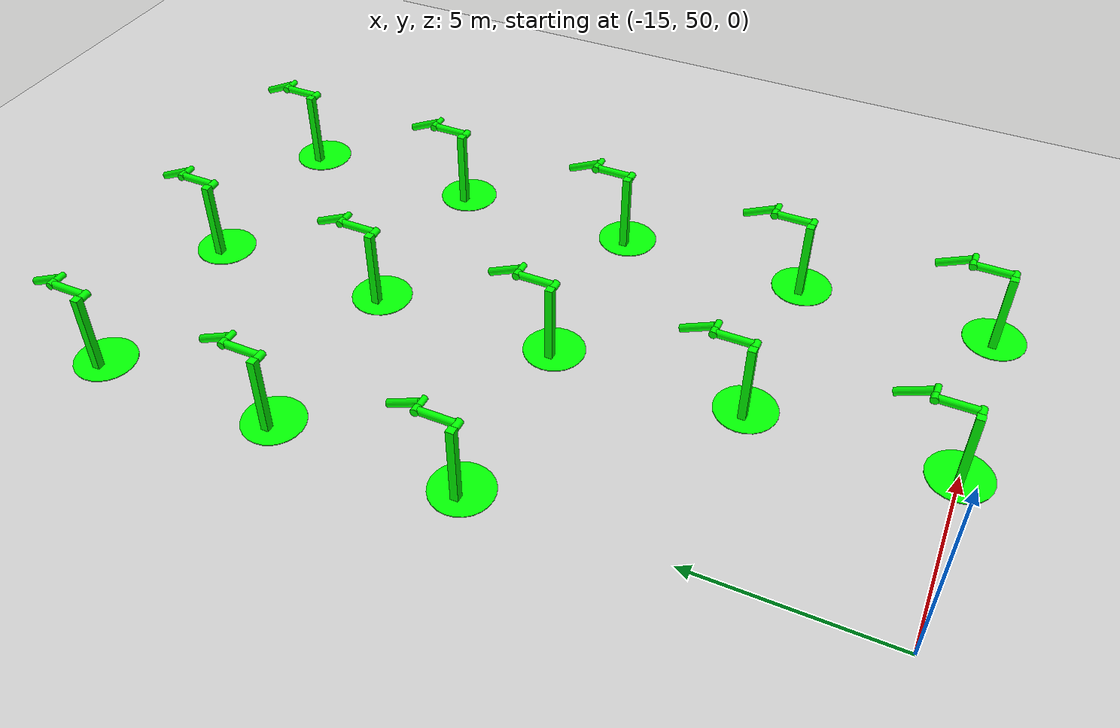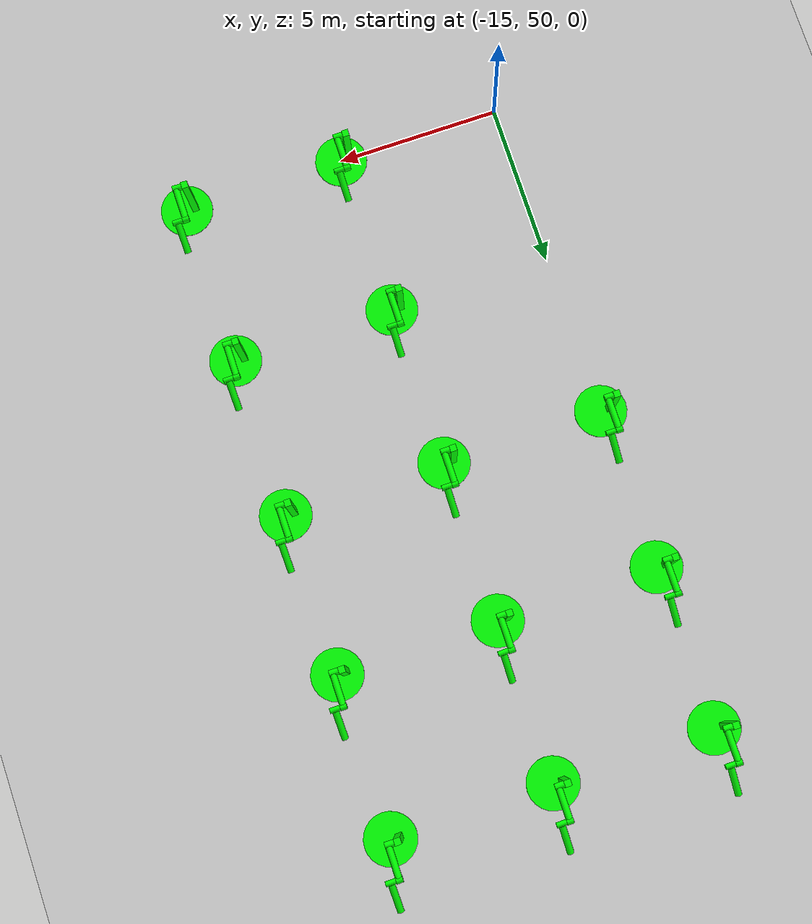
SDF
<sdf version="1.6">
 <world name="double_pendulums">
  <model name="ground_plane">
   <static>true</static>
   <link name="link">
    <collision name="collision">
     <geometry><plane><normal>0 0 1</normal><size>100 100</size></plane></geometry>
    </collision>
    <visual name="visual">
     <geometry><plane><normal>0 0 1</normal><size>100 100</size></plane></geometry>
     <material>
      <ambient>0.8 0.8 0.8 1</ambient>
      <diffuse>0.8 0.8 0.8 1</diffuse>
      <specular>0.8 0.8 0.8 1</specular>
     </material>
    </visual>
   </link>
  </model>
  <model name="dbl_pendulum_153">
   <pose>-10 50 0 0 0 0</pose>
   <link name="base">
    <inertial><mass>100</mass></inertial>
    <visual name="vis_plate_on_ground">
     <pose>0 0 0.01 0 0 0</pose>
     <geometry><cylinder><radius>0.8</radius><length>0.02</length></cylinder></geometry>
     <material><ambient>0 1 0 1</ambient><diffuse>0 1 0 1</diffuse><specular>0 1 0 1</specular></material>
    </visual>
    <visual name="vis_pole">
     <pose>-0.275 0 1.1 0 0 0</pose>
     <geometry><box><size>0.2 0.2 2.2</size></box></geometry>
     <material><ambient>0 1 0 1</ambient><diffuse>0 1 0 1</diffuse><specular>0 1 0 1</specular></material>
    </visual>
    <collision name="col_plate_on_ground">
     <pose>0 0 0.01 0 0 0</pose>
     <geometry><cylinder><radius>0.8</radius><length>0.02</length></cylinder></geometry>
    </collision>
    <collision name="col_pole">
     <pose>-0.275 0 1.1 0 0 0</pose>
     <geometry><box><size>0.2 0.2 2.2</size></box></geometry>
    </collision>
   </link>
   <link name="upper_link">
    <pose>0 0 2.1 -1.5708 0 0</pose>
    <inertial><pose>0 0 0.5 0 0 0</pose></inertial>
    <visual name="vis_upper_joint">
     <pose>-0.05 0 0 0 1.5708 0</pose>
     <geometry><cylinder><radius>0.1</radius><length>0.3</length></cylinder></geometry>
     <material><ambient>0 1 0 1</ambient><diffuse>0 1 0 1</diffuse><specular>0 1 0 1</specular></material>
    </visual>
    <visual name="vis_lower_joint">
     <pose>0 0 1.0 0 1.5708 0</pose>
     <geometry><cylinder><radius>0.1</radius><length>0.2</length></cylinder></geometry>
     <material><ambient>0 1 0 1</ambient><diffuse>0 1 0 1</diffuse><specular>0 1 0 1</specular></material>
    </visual>
    <visual name="vis_cylinder">
     <pose>0 0 0.5 0 0 0</pose>
     <geometry><cylinder><radius>0.1</radius><length>0.9</length></cylinder></geometry>
     <material><ambient>0 1 0 1</ambient><diffuse>0 1 0 1</diffuse><specular>0 1 0 1</specular></material>
    </visual>
    <collision name="col_upper_joint">
     <pose>-0.05 0 0 0 1.5708 0</pose>
     <geometry><cylinder><radius>0.1</radius><length>0.3</length></cylinder></geometry>
    </collision>
    <collision name="col_lower_joint">
     <pose>0 0 1.0 0 1.5708 0</pose>
     <geometry><cylinder><radius>0.1</radius><length>0.2</length></cylinder></geometry>
    </collision>
    <collision name="col_cylinder">
     <pose>0 0 0.5 0 0 0</pose>
     <geometry><cylinder><radius>0.1</radius><length>0.9</length></cylinder></geometry>
    </collision>
   </link>
   <link name="lower_link">
    <pose>0.25 1.0 2.1 -2 0 0</pose>
    <inertial><pose>0 0 0.5 0 0 0</pose></inertial>
    <visual name="vis_lower_joint">
     <pose>0 0 0 0 1.5708 0</pose>
     <geometry><cylinder><radius>0.08</radius><length>0.3</length></cylinder></geometry>
     <material><ambient>0 1 0 1</ambient><diffuse>0 1 0 1</diffuse><specular>0 1 0 1</specular></material>
    </visual>
    <visual name="vis_cylinder">
     <pose>0 0 0.5 0 0 0</pose>
     <geometry><cylinder><radius>0.1</radius><length>0.9</length></cylinder></geometry>
     <material><ambient>0 1 0 1</ambient><diffuse>0 1 0 1</diffuse><specular>0 1 0 1</specular></material>
    </visual>
    <collision name="col_lower_joint">
     <pose>0 0 0 0 1.5708 0</pose>
     <geometry><cylinder><radius>0.08</radius><length>0.3</length></cylinder></geometry>
    </collision>
    <collision name="col_cylinder">
     <pose>0 0 0.5 0 0 0</pose>
     <geometry><cylinder><radius>0.1</radius><length>0.9</length></cylinder></geometry>
    </collision>
   </link>
   <joint name="upper_joint" type="revolute">
    <parent>base</parent>
    <child>upper_link</child>
    <axis><xyz>1.0 0 0</xyz></axis>
   </joint>
   <joint name="lower_joint" type="revolute">
    <parent>upper_link</parent>
    <child>lower_link</child>
    <axis><xyz>1.0 0 0</xyz></axis>
   </joint>
  </model>
  <model name="dbl_pendulum_154">
   <pose>-5 50 0 0 0 0</pose>
   <link name="base">
    <inertial><mass>100</mass></inertial>
    <visual name="vis_plate_on_ground">
     <pose>0 0 0.01 0 0 0</pose>
     <geometry><cylinder><radius>0.8</radius><length>0.02</length></cylinder></geometry>
     <material><ambient>0 1 0 1</ambient><diffuse>0 1 0 1</diffuse><specular>0 1 0 1</specular></material>
    </visual>
    <visual name="vis_pole">
     <pose>-0.275 0 1.1 0 0 0</pose>
     <geometry><box><size>0.2 0.2 2.2</size></box></geometry>
     <material><ambient>0 1 0 1</ambient><diffuse>0 1 0 1</diffuse><specular>0 1 0 1</specular></material>
    </visual>
    <collision name="col_plate_on_ground">
     <pose>0 0 0.01 0 0 0</pose>
     <geometry><cylinder><radius>0.8</radius><length>0.02</length></cylinder></geometry>
    </collision>
    <collision name="col_pole">
     <pose>-0.275 0 1.1 0 0 0</pose>
     <geometry><box><size>0.2 0.2 2.2</size></box></geometry>
    </collision>
   </link>
   <link name="upper_link">
    <pose>0 0 2.1 -1.5708 0 0</pose>
    <inertial><pose>0 0 0.5 0 0 0</pose></inertial>
    <visual name="vis_upper_joint">
     <pose>-0.05 0 0 0 1.5708 0</pose>
     <geometry><cylinder><radius>0.1</radius><length>0.3</length></cylinder></geometry>
     <material><ambient>0 1 0 1</ambient><diffuse>0 1 0 1</diffuse><specular>0 1 0 1</specular></material>
    </visual>
    <visual name="vis_lower_joint">
     <pose>0 0 1.0 0 1.5708 0</pose>
     <geometry><cylinder><radius>0.1</radius><length>0.2</length></cylinder></geometry>
     <material><ambient>0 1 0 1</ambient><diffuse>0 1 0 1</diffuse><specular>0 1 0 1</specular></material>
    </visual>
    <visual name="vis_cylinder">
     <pose>0 0 0.5 0 0 0</pose>
     <geometry><cylinder><radius>0.1</radius><length>0.9</length></cylinder></geometry>
     <material><ambient>0 1 0 1</ambient><diffuse>0 1 0 1</diffuse><specular>0 1 0 1</specular></material>
    </visual>
    <collision name="col_upper_joint">
     <pose>-0.05 0 0 0 1.5708 0</pose>
     <geometry><cylinder><radius>0.1</radius><length>0.3</length></cylinder></geometry>
    </collision>
    <collision name="col_lower_joint">
     <pose>0 0 1.0 0 1.5708 0</pose>
     <geometry><cylinder><radius>0.1</radius><length>0.2</length></cylinder></geometry>
    </collision>
    <collision name="col_cylinder">
     <pose>0 0 0.5 0 0 0</pose>
     <geometry><cylinder><radius>0.1</radius><length>0.9</length></cylinder></geometry>
    </collision>
   </link>
   <link name="lower_link">
    <pose>0.25 1.0 2.1 -2 0 0</pose>
    <inertial><pose>0 0 0.5 0 0 0</pose></inertial>
    <visual name="vis_lower_joint">
     <pose>0 0 0 0 1.5708 0</pose>
     <geometry><cylinder><radius>0.08</radius><length>0.3</length></cylinder></geometry>
     <material><ambient>0 1 0 1</ambient><diffuse>0 1 0 1</diffuse><specular>0 1 0 1</specular></material>
    </visual>
    <visual name="vis_cylinder">
     <pose>0 0 0.5 0 0 0</pose>
     <geometry><cylinder><radius>0.1</radius><length>0.9</length></cylinder></geometry>
     <material><ambient>0 1 0 1</ambient><diffuse>0 1 0 1</diffuse><specular>0 1 0 1</specular></material>
    </visual>
    <collision name="col_lower_joint">
     <pose>0 0 0 0 1.5708 0</pose>
     <geometry><cylinder><radius>0.08</radius><length>0.3</length></cylinder></geometry>
    </collision>
    <collision name="col_cylinder">
     <pose>0 0 0.5 0 0 0</pose>
     <geometry><cylinder><radius>0.1</radius><length>0.9</length></cylinder></geometry>
    </collision>
   </link>
   <joint name="upper_joint" type="revolute">
    <parent>base</parent>
    <child>upper_link</child>
    <axis><xyz>1.0 0 0</xyz></axis>
   </joint>
   <joint name="lower_joint" type="revolute">
    <parent>upper_link</parent>
    <child>lower_link</child>
    <axis><xyz>1.0 0 0</xyz></axis>
   </joint>
  </model>
  <model name="dbl_pendulum_168">
   <pose>-10 55 0 0 0 0</pose>
   <link name="base">
    <inertial><mass>100</mass></inertial>
    <visual name="vis_plate_on_ground">
     <pose>0 0 0.01 0 0 0</pose>
     <geometry><cylinder><radius>0.8</radius><length>0.02</length></cylinder></geometry>
     <material><ambient>0 1 0 1</ambient><diffuse>0 1 0 1</diffuse><specular>0 1 0 1</specular></material>
    </visual>
    <visual name="vis_pole">
     <pose>-0.275 0 1.1 0 0 0</pose>
     <geometry><box><size>0.2 0.2 2.2</size></box></geometry>
     <material><ambient>0 1 0 1</ambient><diffuse>0 1 0 1</diffuse><specular>0 1 0 1</specular></material>
    </visual>
    <collision name="col_plate_on_ground">
     <pose>0 0 0.01 0 0 0</pose>
     <geometry><cylinder><radius>0.8</radius><length>0.02</length></cylinder></geometry>
    </collision>
    <collision name="col_pole">
     <pose>-0.275 0 1.1 0 0 0</pose>
     <geometry><box><size>0.2 0.2 2.2</size></box></geometry>
    </collision>
   </link>
   <link name="upper_link">
    <pose>0 0 2.1 -1.5708 0 0</pose>
    <inertial><pose>0 0 0.5 0 0 0</pose></inertial>
    <visual name="vis_upper_joint">
     <pose>-0.05 0 0 0 1.5708 0</pose>
     <geometry><cylinder><radius>0.1</radius><length>0.3</length></cylinder></geometry>
     <material><ambient>0 1 0 1</ambient><diffuse>0 1 0 1</diffuse><specular>0 1 0 1</specular></material>
    </visual>
    <visual name="vis_lower_joint">
     <pose>0 0 1.0 0 1.5708 0</pose>
     <geometry><cylinder><radius>0.1</radius><length>0.2</length></cylinder></geometry>
     <material><ambient>0 1 0 1</ambient><diffuse>0 1 0 1</diffuse><specular>0 1 0 1</specular></material>
    </visual>
    <visual name="vis_cylinder">
     <pose>0 0 0.5 0 0 0</pose>
     <geometry><cylinder><radius>0.1</radius><length>0.9</length></cylinder></geometry>
     <material><ambient>0 1 0 1</ambient><diffuse>0 1 0 1</diffuse><specular>0 1 0 1</specular></material>
    </visual>
    <collision name="col_upper_joint">
     <pose>-0.05 0 0 0 1.5708 0</pose>
     <geometry><cylinder><radius>0.1</radius><length>0.3</length></cylinder></geometry>
    </collision>
    <collision name="col_lower_joint">
     <pose>0 0 1.0 0 1.5708 0</pose>
     <geometry><cylinder><radius>0.1</radius><length>0.2</length></cylinder></geometry>
    </collision>
    <collision name="col_cylinder">
     <pose>0 0 0.5 0 0 0</pose>
     <geometry><cylinder><radius>0.1</radius><length>0.9</length></cylinder></geometry>
    </collision>
   </link>
   <link name="lower_link">
    <pose>0.25 1.0 2.1 -2 0 0</pose>
    <inertial><pose>0 0 0.5 0 0 0</pose></inertial>
    <visual name="vis_lower_joint">
     <pose>0 0 0 0 1.5708 0</pose>
     <geometry><cylinder><radius>0.08</radius><length>0.3</length></cylinder></geometry>
     <material><ambient>0 1 0 1</ambient><diffuse>0 1 0 1</diffuse><specular>0 1 0 1</specular></material>
    </visual>
    <visual name="vis_cylinder">
     <pose>0 0 0.5 0 0 0</pose>
     <geometry><cylinder><radius>0.1</radius><length>0.9</length></cylinder></geometry>
     <material><ambient>0 1 0 1</ambient><diffuse>0 1 0 1</diffuse><specular>0 1 0 1</specular></material>
    </visual>
    <collision name="col_lower_joint">
     <pose>0 0 0 0 1.5708 0</pose>
     <geometry><cylinder><radius>0.08</radius><length>0.3</length></cylinder></geometry>
    </collision>
    <collision name="col_cylinder">
     <pose>0 0 0.5 0 0 0</pose>
     <geometry><cylinder><radius>0.1</radius><length>0.9</length></cylinder></geometry>
    </collision>
   </link>
   <joint name="upper_joint" type="revolute">
    <parent>base</parent>
    <child>upper_link</child>
    <axis><xyz>1.0 0 0</xyz></axis>
   </joint>
   <joint name="lower_joint" type="revolute">
    <parent>upper_link</parent>
    <child>lower_link</child>
    <axis><xyz>1.0 0 0</xyz></axis>
   </joint>
  </model>
  <model name="dbl_pendulum_169">
   <pose>-5 55 0 0 0 0</pose>
   <link name="base">
    <inertial><mass>100</mass></inertial>
    <visual name="vis_plate_on_ground">
     <pose>0 0 0.01 0 0 0</pose>
     <geometry><cylinder><radius>0.8</radius><length>0.02</length></cylinder></geometry>
     <material><ambient>0 1 0 1</ambient><diffuse>0 1 0 1</diffuse><specular>0 1 0 1</specular></material>
    </visual>
    <visual name="vis_pole">
     <pose>-0.275 0 1.1 0 0 0</pose>
     <geometry><box><size>0.2 0.2 2.2</size></box></geometry>
     <material><ambient>0 1 0 1</ambient><diffuse>0 1 0 1</diffuse><specular>0 1 0 1</specular></material>
    </visual>
    <collision name="col_plate_on_ground">
     <pose>0 0 0.01 0 0 0</pose>
     <geometry><cylinder><radius>0.8</radius><length>0.02</length></cylinder></geometry>
    </collision>
    <collision name="col_pole">
     <pose>-0.275 0 1.1 0 0 0</pose>
     <geometry><box><size>0.2 0.2 2.2</size></box></geometry>
    </collision>
   </link>
   <link name="upper_link">
    <pose>0 0 2.1 -1.5708 0 0</pose>
    <inertial><pose>0 0 0.5 0 0 0</pose></inertial>
    <visual name="vis_upper_joint">
     <pose>-0.05 0 0 0 1.5708 0</pose>
     <geometry><cylinder><radius>0.1</radius><length>0.3</length></cylinder></geometry>
     <material><ambient>0 1 0 1</ambient><diffuse>0 1 0 1</diffuse><specular>0 1 0 1</specular></material>
    </visual>
    <visual name="vis_lower_joint">
     <pose>0 0 1.0 0 1.5708 0</pose>
     <geometry><cylinder><radius>0.1</radius><length>0.2</length></cylinder></geometry>
     <material><ambient>0 1 0 1</ambient><diffuse>0 1 0 1</diffuse><specular>0 1 0 1</specular></material>
    </visual>
    <visual name="vis_cylinder">
     <pose>0 0 0.5 0 0 0</pose>
     <geometry><cylinder><radius>0.1</radius><length>0.9</length></cylinder></geometry>
     <material><ambient>0 1 0 1</ambient><diffuse>0 1 0 1</diffuse><specular>0 1 0 1</specular></material>
    </visual>
    <collision name="col_upper_joint">
     <pose>-0.05 0 0 0 1.5708 0</pose>
     <geometry><cylinder><radius>0.1</radius><length>0.3</length></cylinder></geometry>
    </collision>
    <collision name="col_lower_joint">
     <pose>0 0 1.0 0 1.5708 0</pose>
     <geometry><cylinder><radius>0.1</radius><length>0.2</length></cylinder></geometry>
    </collision>
    <collision name="col_cylinder">
     <pose>0 0 0.5 0 0 0</pose>
     <geometry><cylinder><radius>0.1</radius><length>0.9</length></cylinder></geometry>
    </collision>
   </link>
   <link name="lower_link">
    <pose>0.25 1.0 2.1 -2 0 0</pose>
    <inertial><pose>0 0 0.5 0 0 0</pose></inertial>
    <visual name="vis_lower_joint">
     <pose>0 0 0 0 1.5708 0</pose>
     <geometry><cylinder><radius>0.08</radius><length>0.3</length></cylinder></geometry>
     <material><ambient>0 1 0 1</ambient><diffuse>0 1 0 1</diffuse><specular>0 1 0 1</specular></material>
    </visual>
    <visual name="vis_cylinder">
     <pose>0 0 0.5 0 0 0</pose>
     <geometry><cylinder><radius>0.1</radius><length>0.9</length></cylinder></geometry>
     <material><ambient>0 1 0 1</ambient><diffuse>0 1 0 1</diffuse><specular>0 1 0 1</specular></material>
    </visual>
    <collision name="col_lower_joint">
     <pose>0 0 0 0 1.5708 0</pose>
     <geometry><cylinder><radius>0.08</radius><length>0.3</length></cylinder></geometry>
    </collision>
    <collision name="col_cylinder">
     <pose>0 0 0.5 0 0 0</pose>
     <geometry><cylinder><radius>0.1</radius><length>0.9</length></cylinder></geometry>
    </collision>
   </link>
   <joint name="upper_joint" type="revolute">
    <parent>base</parent>
    <child>upper_link</child>
    <axis><xyz>1.0 0 0</xyz></axis>
   </joint>
   <joint name="lower_joint" type="revolute">
    <parent>upper_link</parent>
    <child>lower_link</child>
    <axis><xyz>1.0 0 0</xyz></axis>
   </joint>
  </model>
  <model name="dbl_pendulum_182">
   <pose>-15 60 0 0 0 0</pose>
   <link name="base">
    <inertial><mass>100</mass></inertial>
    <visual name="vis_plate_on_ground">
     <pose>0 0 0.01 0 0 0</pose>
     <geometry><cylinder><radius>0.8</radius><length>0.02</length></cylinder></geometry>
     <material><ambient>0 1 0 1</ambient><diffuse>0 1 0 1</diffuse><specular>0 1 0 1</specular></material>
    </visual>
    <visual name="vis_pole">
     <pose>-0.275 0 1.1 0 0 0</pose>
     <geometry><box><size>0.2 0.2 2.2</size></box></geometry>
     <material><ambient>0 1 0 1</ambient><diffuse>0 1 0 1</diffuse><specular>0 1 0 1</specular></material>
    </visual>
    <collision name="col_plate_on_ground">
     <pose>0 0 0.01 0 0 0</pose>
     <geometry><cylinder><radius>0.8</radius><length>0.02</length></cylinder></geometry>
    </collision>
    <collision name="col_pole">
     <pose>-0.275 0 1.1 0 0 0</pose>
     <geometry><box><size>0.2 0.2 2.2</size></box></geometry>
    </collision>
   </link>
   <link name="upper_link">
    <pose>0 0 2.1 -1.5708 0 0</pose>
    <inertial><pose>0 0 0.5 0 0 0</pose></inertial>
    <visual name="vis_upper_joint">
     <pose>-0.05 0 0 0 1.5708 0</pose>
     <geometry><cylinder><radius>0.1</radius><length>0.3</length></cylinder></geometry>
     <material><ambient>0 1 0 1</ambient><diffuse>0 1 0 1</diffuse><specular>0 1 0 1</specular></material>
    </visual>
    <visual name="vis_lower_joint">
     <pose>0 0 1.0 0 1.5708 0</pose>
     <geometry><cylinder><radius>0.1</radius><length>0.2</length></cylinder></geometry>
     <material><ambient>0 1 0 1</ambient><diffuse>0 1 0 1</diffuse><specular>0 1 0 1</specular></material>
    </visual>
    <visual name="vis_cylinder">
     <pose>0 0 0.5 0 0 0</pose>
     <geometry><cylinder><radius>0.1</radius><length>0.9</length></cylinder></geometry>
     <material><ambient>0 1 0 1</ambient><diffuse>0 1 0 1</diffuse><specular>0 1 0 1</specular></material>
    </visual>
    <collision name="col_upper_joint">
     <pose>-0.05 0 0 0 1.5708 0</pose>
     <geometry><cylinder><radius>0.1</radius><length>0.3</length></cylinder></geometry>
    </collision>
    <collision name="col_lower_joint">
     <pose>0 0 1.0 0 1.5708 0</pose>
     <geometry><cylinder><radius>0.1</radius><length>0.2</length></cylinder></geometry>
    </collision>
    <collision name="col_cylinder">
     <pose>0 0 0.5 0 0 0</pose>
     <geometry><cylinder><radius>0.1</radius><length>0.9</length></cylinder></geometry>
    </collision>
   </link>
   <link name="lower_link">
    <pose>0.25 1.0 2.1 -2 0 0</pose>
    <inertial><pose>0 0 0.5 0 0 0</pose></inertial>
    <visual name="vis_lower_joint">
     <pose>0 0 0 0 1.5708 0</pose>
     <geometry><cylinder><radius>0.08</radius><length>0.3</length></cylinder></geometry>
     <material><ambient>0 1 0 1</ambient><diffuse>0 1 0 1</diffuse><specular>0 1 0 1</specular></material>
    </visual>
    <visual name="vis_cylinder">
     <pose>0 0 0.5 0 0 0</pose>
     <geometry><cylinder><radius>0.1</radius><length>0.9</length></cylinder></geometry>
     <material><ambient>0 1 0 1</ambient><diffuse>0 1 0 1</diffuse><specular>0 1 0 1</specular></material>
    </visual>
    <collision name="col_lower_joint">
     <pose>0 0 0 0 1.5708 0</pose>
     <geometry><cylinder><radius>0.08</radius><length>0.3</length></cylinder></geometry>
    </collision>
    <collision name="col_cylinder">
     <pose>0 0 0.5 0 0 0</pose>
     <geometry><cylinder><radius>0.1</radius><length>0.9</length></cylinder></geometry>
    </collision>
   </link>
   <joint name="upper_joint" type="revolute">
    <parent>base</parent>
    <child>upper_link</child>
    <axis><xyz>1.0 0 0</xyz></axis>
   </joint>
   <joint name="lower_joint" type="revolute">
    <parent>upper_link</parent>
    <child>lower_link</child>
    <axis><xyz>1.0 0 0</xyz></axis>
   </joint>
  </model>
  <model name="dbl_pendulum_183">
   <pose>-10 60 0 0 0 0</pose>
   <link name="base">
    <inertial><mass>100</mass></inertial>
    <visual name="vis_plate_on_ground">
     <pose>0 0 0.01 0 0 0</pose>
     <geometry><cylinder><radius>0.8</radius><length>0.02</length></cylinder></geometry>
     <material><ambient>0 1 0 1</ambient><diffuse>0 1 0 1</diffuse><specular>0 1 0 1</specular></material>
    </visual>
    <visual name="vis_pole">
     <pose>-0.275 0 1.1 0 0 0</pose>
     <geometry><box><size>0.2 0.2 2.2</size></box></geometry>
     <material><ambient>0 1 0 1</ambient><diffuse>0 1 0 1</diffuse><specular>0 1 0 1</specular></material>
    </visual>
    <collision name="col_plate_on_ground">
     <pose>0 0 0.01 0 0 0</pose>
     <geometry><cylinder><radius>0.8</radius><length>0.02</length></cylinder></geometry>
    </collision>
    <collision name="col_pole">
     <pose>-0.275 0 1.1 0 0 0</pose>
     <geometry><box><size>0.2 0.2 2.2</size></box></geometry>
    </collision>
   </link>
   <link name="upper_link">
    <pose>0 0 2.1 -1.5708 0 0</pose>
    <inertial><pose>0 0 0.5 0 0 0</pose></inertial>
    <visual name="vis_upper_joint">
     <pose>-0.05 0 0 0 1.5708 0</pose>
     <geometry><cylinder><radius>0.1</radius><length>0.3</length></cylinder></geometry>
     <material><ambient>0 1 0 1</ambient><diffuse>0 1 0 1</diffuse><specular>0 1 0 1</specular></material>
    </visual>
    <visual name="vis_lower_joint">
     <pose>0 0 1.0 0 1.5708 0</pose>
     <geometry><cylinder><radius>0.1</radius><length>0.2</length></cylinder></geometry>
     <material><ambient>0 1 0 1</ambient><diffuse>0 1 0 1</diffuse><specular>0 1 0 1</specular></material>
    </visual>
    <visual name="vis_cylinder">
     <pose>0 0 0.5 0 0 0</pose>
     <geometry><cylinder><radius>0.1</radius><length>0.9</length></cylinder></geometry>
     <material><ambient>0 1 0 1</ambient><diffuse>0 1 0 1</diffuse><specular>0 1 0 1</specular></material>
    </visual>
    <collision name="col_upper_joint">
     <pose>-0.05 0 0 0 1.5708 0</pose>
     <geometry><cylinder><radius>0.1</radius><length>0.3</length></cylinder></geometry>
    </collision>
    <collision name="col_lower_joint">
     <pose>0 0 1.0 0 1.5708 0</pose>
     <geometry><cylinder><radius>0.1</radius><length>0.2</length></cylinder></geometry>
    </collision>
    <collision name="col_cylinder">
     <pose>0 0 0.5 0 0 0</pose>
     <geometry><cylinder><radius>0.1</radius><length>0.9</length></cylinder></geometry>
    </collision>
   </link>
   <link name="lower_link">
    <pose>0.25 1.0 2.1 -2 0 0</pose>
    <inertial><pose>0 0 0.5 0 0 0</pose></inertial>
    <visual name="vis_lower_joint">
     <pose>0 0 0 0 1.5708 0</pose>
     <geometry><cylinder><radius>0.08</radius><length>0.3</length></cylinder></geometry>
     <material><ambient>0 1 0 1</ambient><diffuse>0 1 0 1</diffuse><specular>0 1 0 1</specular></material>
    </visual>
    <visual name="vis_cylinder">
     <pose>0 0 0.5 0 0 0</pose>
     <geometry><cylinder><radius>0.1</radius><length>0.9</length></cylinder></geometry>
     <material><ambient>0 1 0 1</ambient><diffuse>0 1 0 1</diffuse><specular>0 1 0 1</specular></material>
    </visual>
    <collision name="col_lower_joint">
     <pose>0 0 0 0 1.5708 0</pose>
     <geometry><cylinder><radius>0.08</radius><length>0.3</length></cylinder></geometry>
    </collision>
    <collision name="col_cylinder">
     <pose>0 0 0.5 0 0 0</pose>
     <geometry><cylinder><radius>0.1</radius><length>0.9</length></cylinder></geometry>
    </collision>
   </link>
   <joint name="upper_joint" type="revolute">
    <parent>base</parent>
    <child>upper_link</child>
    <axis><xyz>1.0 0 0</xyz></axis>
   </joint>
   <joint name="lower_joint" type="revolute">
    <parent>upper_link</parent>
    <child>lower_link</child>
    <axis><xyz>1.0 0 0</xyz></axis>
   </joint>
  </model>
  <model name="dbl_pendulum_184">
   <pose>-5 60 0 0 0 0</pose>
   <link name="base">
    <inertial><mass>100</mass></inertial>
    <visual name="vis_plate_on_ground">
     <pose>0 0 0.01 0 0 0</pose>
     <geometry><cylinder><radius>0.8</radius><length>0.02</length></cylinder></geometry>
     <material><ambient>0 1 0 1</ambient><diffuse>0 1 0 1</diffuse><specular>0 1 0 1</specular></material>
    </visual>
    <visual name="vis_pole">
     <pose>-0.275 0 1.1 0 0 0</pose>
     <geometry><box><size>0.2 0.2 2.2</size></box></geometry>
     <material><ambient>0 1 0 1</ambient><diffuse>0 1 0 1</diffuse><specular>0 1 0 1</specular></material>
    </visual>
    <collision name="col_plate_on_ground">
     <pose>0 0 0.01 0 0 0</pose>
     <geometry><cylinder><radius>0.8</radius><length>0.02</length></cylinder></geometry>
    </collision>
    <collision name="col_pole">
     <pose>-0.275 0 1.1 0 0 0</pose>
     <geometry><box><size>0.2 0.2 2.2</size></box></geometry>
    </collision>
   </link>
   <link name="upper_link">
    <pose>0 0 2.1 -1.5708 0 0</pose>
    <inertial><pose>0 0 0.5 0 0 0</pose></inertial>
    <visual name="vis_upper_joint">
     <pose>-0.05 0 0 0 1.5708 0</pose>
     <geometry><cylinder><radius>0.1</radius><length>0.3</length></cylinder></geometry>
     <material><ambient>0 1 0 1</ambient><diffuse>0 1 0 1</diffuse><specular>0 1 0 1</specular></material>
    </visual>
    <visual name="vis_lower_joint">
     <pose>0 0 1.0 0 1.5708 0</pose>
     <geometry><cylinder><radius>0.1</radius><length>0.2</length></cylinder></geometry>
     <material><ambient>0 1 0 1</ambient><diffuse>0 1 0 1</diffuse><specular>0 1 0 1</specular></material>
    </visual>
    <visual name="vis_cylinder">
     <pose>0 0 0.5 0 0 0</pose>
     <geometry><cylinder><radius>0.1</radius><length>0.9</length></cylinder></geometry>
     <material><ambient>0 1 0 1</ambient><diffuse>0 1 0 1</diffuse><specular>0 1 0 1</specular></material>
    </visual>
    <collision name="col_upper_joint">
     <pose>-0.05 0 0 0 1.5708 0</pose>
     <geometry><cylinder><radius>0.1</radius><length>0.3</length></cylinder></geometry>
    </collision>
    <collision name="col_lower_joint">
     <pose>0 0 1.0 0 1.5708 0</pose>
     <geometry><cylinder><radius>0.1</radius><length>0.2</length></cylinder></geometry>
    </collision>
    <collision name="col_cylinder">
     <pose>0 0 0.5 0 0 0</pose>
     <geometry><cylinder><radius>0.1</radius><length>0.9</length></cylinder></geometry>
    </collision>
   </link>
   <link name="lower_link">
    <pose>0.25 1.0 2.1 -2 0 0</pose>
    <inertial><pose>0 0 0.5 0 0 0</pose></inertial>
    <visual name="vis_lower_joint">
     <pose>0 0 0 0 1.5708 0</pose>
     <geometry><cylinder><radius>0.08</radius><length>0.3</length></cylinder></geometry>
     <material><ambient>0 1 0 1</ambient><diffuse>0 1 0 1</diffuse><specular>0 1 0 1</specular></material>
    </visual>
    <visual name="vis_cylinder">
     <pose>0 0 0.5 0 0 0</pose>
     <geometry><cylinder><radius>0.1</radius><length>0.9</length></cylinder></geometry>
     <material><ambient>0 1 0 1</ambient><diffuse>0 1 0 1</diffuse><specular>0 1 0 1</specular></material>
    </visual>
    <collision name="col_lower_joint">
     <pose>0 0 0 0 1.5708 0</pose>
     <geometry><cylinder><radius>0.08</radius><length>0.3</length></cylinder></geometry>
    </collision>
    <collision name="col_cylinder">
     <pose>0 0 0.5 0 0 0</pose>
     <geometry><cylinder><radius>0.1</radius><length>0.9</length></cylinder></geometry>
    </collision>
   </link>
   <joint name="upper_joint" type="revolute">
    <parent>base</parent>
    <child>upper_link</child>
    <axis><xyz>1.0 0 0</xyz></axis>
   </joint>
   <joint name="lower_joint" type="revolute">
    <parent>upper_link</parent>
    <child>lower_link</child>
    <axis><xyz>1.0 0 0</xyz></axis>
   </joint>
  </model>
  <model name="dbl_pendulum_197">
   <pose>-15 65 0 0 0 0</pose>
   <link name="base">
    <inertial><mass>100</mass></inertial>
    <visual name="vis_plate_on_ground">
     <pose>0 0 0.01 0 0 0</pose>
     <geometry><cylinder><radius>0.8</radius><length>0.02</length></cylinder></geometry>
     <material><ambient>0 1 0 1</ambient><diffuse>0 1 0 1</diffuse><specular>0 1 0 1</specular></material>
    </visual>
    <visual name="vis_pole">
     <pose>-0.275 0 1.1 0 0 0</pose>
     <geometry><box><size>0.2 0.2 2.2</size></box></geometry>
     <material><ambient>0 1 0 1</ambient><diffuse>0 1 0 1</diffuse><specular>0 1 0 1</specular></material>
    </visual>
    <collision name="col_plate_on_ground">
     <pose>0 0 0.01 0 0 0</pose>
     <geometry><cylinder><radius>0.8</radius><length>0.02</length></cylinder></geometry>
    </collision>
    <collision name="col_pole">
     <pose>-0.275 0 1.1 0 0 0</pose>
     <geometry><box><size>0.2 0.2 2.2</size></box></geometry>
    </collision>
   </link>
   <link name="upper_link">
    <pose>0 0 2.1 -1.5708 0 0</pose>
    <inertial><pose>0 0 0.5 0 0 0</pose></inertial>
    <visual name="vis_upper_joint">
     <pose>-0.05 0 0 0 1.5708 0</pose>
     <geometry><cylinder><radius>0.1</radius><length>0.3</length></cylinder></geometry>
     <material><ambient>0 1 0 1</ambient><diffuse>0 1 0 1</diffuse><specular>0 1 0 1</specular></material>
    </visual>
    <visual name="vis_lower_joint">
     <pose>0 0 1.0 0 1.5708 0</pose>
     <geometry><cylinder><radius>0.1</radius><length>0.2</length></cylinder></geometry>
     <material><ambient>0 1 0 1</ambient><diffuse>0 1 0 1</diffuse><specular>0 1 0 1</specular></material>
    </visual>
    <visual name="vis_cylinder">
     <pose>0 0 0.5 0 0 0</pose>
     <geometry><cylinder><radius>0.1</radius><length>0.9</length></cylinder></geometry>
     <material><ambient>0 1 0 1</ambient><diffuse>0 1 0 1</diffuse><specular>0 1 0 1</specular></material>
    </visual>
    <collision name="col_upper_joint">
     <pose>-0.05 0 0 0 1.5708 0</pose>
     <geometry><cylinder><radius>0.1</radius><length>0.3</length></cylinder></geometry>
    </collision>
    <collision name="col_lower_joint">
     <pose>0 0 1.0 0 1.5708 0</pose>
     <geometry><cylinder><radius>0.1</radius><length>0.2</length></cylinder></geometry>
    </collision>
    <collision name="col_cylinder">
     <pose>0 0 0.5 0 0 0</pose>
     <geometry><cylinder><radius>0.1</radius><length>0.9</length></cylinder></geometry>
    </collision>
   </link>
   <link name="lower_link">
    <pose>0.25 1.0 2.1 -2 0 0</pose>
    <inertial><pose>0 0 0.5 0 0 0</pose></inertial>
    <visual name="vis_lower_joint">
     <pose>0 0 0 0 1.5708 0</pose>
     <geometry><cylinder><radius>0.08</radius><length>0.3</length></cylinder></geometry>
     <material><ambient>0 1 0 1</ambient><diffuse>0 1 0 1</diffuse><specular>0 1 0 1</specular></material>
    </visual>
    <visual name="vis_cylinder">
     <pose>0 0 0.5 0 0 0</pose>
     <geometry><cylinder><radius>0.1</radius><length>0.9</length></cylinder></geometry>
     <material><ambient>0 1 0 1</ambient><diffuse>0 1 0 1</diffuse><specular>0 1 0 1</specular></material>
    </visual>
    <collision name="col_lower_joint">
     <pose>0 0 0 0 1.5708 0</pose>
     <geometry><cylinder><radius>0.08</radius><length>0.3</length></cylinder></geometry>
    </collision>
    <collision name="col_cylinder">
     <pose>0 0 0.5 0 0 0</pose>
     <geometry><cylinder><radius>0.1</radius><length>0.9</length></cylinder></geometry>
    </collision>
   </link>
   <joint name="upper_joint" type="revolute">
    <parent>base</parent>
    <child>upper_link</child>
    <axis><xyz>1.0 0 0</xyz></axis>
   </joint>
   <joint name="lower_joint" type="revolute">
    <parent>upper_link</parent>
    <child>lower_link</child>
    <axis><xyz>1.0 0 0</xyz></axis>
   </joint>
  </model>
  <model name="dbl_pendulum_198">
   <pose>-10 65 0 0 0 0</pose>
   <link name="base">
    <inertial><mass>100</mass></inertial>
    <visual name="vis_plate_on_ground">
     <pose>0 0 0.01 0 0 0</pose>
     <geometry><cylinder><radius>0.8</radius><length>0.02</length></cylinder></geometry>
     <material><ambient>0 1 0 1</ambient><diffuse>0 1 0 1</diffuse><specular>0 1 0 1</specular></material>
    </visual>
    <visual name="vis_pole">
     <pose>-0.275 0 1.1 0 0 0</pose>
     <geometry><box><size>0.2 0.2 2.2</size></box></geometry>
     <material><ambient>0 1 0 1</ambient><diffuse>0 1 0 1</diffuse><specular>0 1 0 1</specular></material>
    </visual>
    <collision name="col_plate_on_ground">
     <pose>0 0 0.01 0 0 0</pose>
     <geometry><cylinder><radius>0.8</radius><length>0.02</length></cylinder></geometry>
    </collision>
    <collision name="col_pole">
     <pose>-0.275 0 1.1 0 0 0</pose>
     <geometry><box><size>0.2 0.2 2.2</size></box></geometry>
    </collision>
   </link>
   <link name="upper_link">
    <pose>0 0 2.1 -1.5708 0 0</pose>
    <inertial><pose>0 0 0.5 0 0 0</pose></inertial>
    <visual name="vis_upper_joint">
     <pose>-0.05 0 0 0 1.5708 0</pose>
     <geometry><cylinder><radius>0.1</radius><length>0.3</length></cylinder></geometry>
     <material><ambient>0 1 0 1</ambient><diffuse>0 1 0 1</diffuse><specular>0 1 0 1</specular></material>
    </visual>
    <visual name="vis_lower_joint">
     <pose>0 0 1.0 0 1.5708 0</pose>
     <geometry><cylinder><radius>0.1</radius><length>0.2</length></cylinder></geometry>
     <material><ambient>0 1 0 1</ambient><diffuse>0 1 0 1</diffuse><specular>0 1 0 1</specular></material>
    </visual>
    <visual name="vis_cylinder">
     <pose>0 0 0.5 0 0 0</pose>
     <geometry><cylinder><radius>0.1</radius><length>0.9</length></cylinder></geometry>
     <material><ambient>0 1 0 1</ambient><diffuse>0 1 0 1</diffuse><specular>0 1 0 1</specular></material>
    </visual>
    <collision name="col_upper_joint">
     <pose>-0.05 0 0 0 1.5708 0</pose>
     <geometry><cylinder><radius>0.1</radius><length>0.3</length></cylinder></geometry>
    </collision>
    <collision name="col_lower_joint">
     <pose>0 0 1.0 0 1.5708 0</pose>
     <geometry><cylinder><radius>0.1</radius><length>0.2</length></cylinder></geometry>
    </collision>
    <collision name="col_cylinder">
     <pose>0 0 0.5 0 0 0</pose>
     <geometry><cylinder><radius>0.1</radius><length>0.9</length></cylinder></geometry>
    </collision>
   </link>
   <link name="lower_link">
    <pose>0.25 1.0 2.1 -2 0 0</pose>
    <inertial><pose>0 0 0.5 0 0 0</pose></inertial>
    <visual name="vis_lower_joint">
     <pose>0 0 0 0 1.5708 0</pose>
     <geometry><cylinder><radius>0.08</radius><length>0.3</length></cylinder></geometry>
     <material><ambient>0 1 0 1</ambient><diffuse>0 1 0 1</diffuse><specular>0 1 0 1</specular></material>
    </visual>
    <visual name="vis_cylinder">
     <pose>0 0 0.5 0 0 0</pose>
     <geometry><cylinder><radius>0.1</radius><length>0.9</length></cylinder></geometry>
     <material><ambient>0 1 0 1</ambient><diffuse>0 1 0 1</diffuse><specular>0 1 0 1</specular></material>
    </visual>
    <collision name="col_lower_joint">
     <pose>0 0 0 0 1.5708 0</pose>
     <geometry><cylinder><radius>0.08</radius><length>0.3</length></cylinder></geometry>
    </collision>
    <collision name="col_cylinder">
     <pose>0 0 0.5 0 0 0</pose>
     <geometry><cylinder><radius>0.1</radius><length>0.9</length></cylinder></geometry>
    </collision>
   </link>
   <joint name="upper_joint" type="revolute">
    <parent>base</parent>
    <child>upper_link</child>
    <axis><xyz>1.0 0 0</xyz></axis>
   </joint>
   <joint name="lower_joint" type="revolute">
    <parent>upper_link</parent>
    <child>lower_link</child>
    <axis><xyz>1.0 0 0</xyz></axis>
   </joint>
  </model>
  <model name="dbl_pendulum_199">
   <pose>-5 65 0 0 0 0</pose>
   <link name="base">
    <inertial><mass>100</mass></inertial>
    <visual name="vis_plate_on_ground">
     <pose>0 0 0.01 0 0 0</pose>
     <geometry><cylinder><radius>0.8</radius><length>0.02</length></cylinder></geometry>
     <material><ambient>0 1 0 1</ambient><diffuse>0 1 0 1</diffuse><specular>0 1 0 1</specular></material>
    </visual>
    <visual name="vis_pole">
     <pose>-0.275 0 1.1 0 0 0</pose>
     <geometry><box><size>0.2 0.2 2.2</size></box></geometry>
     <material><ambient>0 1 0 1</ambient><diffuse>0 1 0 1</diffuse><specular>0 1 0 1</specular></material>
    </visual>
    <collision name="col_plate_on_ground">
     <pose>0 0 0.01 0 0 0</pose>
     <geometry><cylinder><radius>0.8</radius><length>0.02</length></cylinder></geometry>
    </collision>
    <collision name="col_pole">
     <pose>-0.275 0 1.1 0 0 0</pose>
     <geometry><box><size>0.2 0.2 2.2</size></box></geometry>
    </collision>
   </link>
   <link name="upper_link">
    <pose>0 0 2.1 -1.5708 0 0</pose>
    <inertial><pose>0 0 0.5 0 0 0</pose></inertial>
    <visual name="vis_upper_joint">
     <pose>-0.05 0 0 0 1.5708 0</pose>
     <geometry><cylinder><radius>0.1</radius><length>0.3</length></cylinder></geometry>
     <material><ambient>0 1 0 1</ambient><diffuse>0 1 0 1</diffuse><specular>0 1 0 1</specular></material>
    </visual>
    <visual name="vis_lower_joint">
     <pose>0 0 1.0 0 1.5708 0</pose>
     <geometry><cylinder><radius>0.1</radius><length>0.2</length></cylinder></geometry>
     <material><ambient>0 1 0 1</ambient><diffuse>0 1 0 1</diffuse><specular>0 1 0 1</specular></material>
    </visual>
    <visual name="vis_cylinder">
     <pose>0 0 0.5 0 0 0</pose>
     <geometry><cylinder><radius>0.1</radius><length>0.9</length></cylinder></geometry>
     <material><ambient>0 1 0 1</ambient><diffuse>0 1 0 1</diffuse><specular>0 1 0 1</specular></material>
    </visual>
    <collision name="col_upper_joint">
     <pose>-0.05 0 0 0 1.5708 0</pose>
     <geometry><cylinder><radius>0.1</radius><length>0.3</length></cylinder></geometry>
    </collision>
    <collision name="col_lower_joint">
     <pose>0 0 1.0 0 1.5708 0</pose>
     <geometry><cylinder><radius>0.1</radius><length>0.2</length></cylinder></geometry>
    </collision>
    <collision name="col_cylinder">
     <pose>0 0 0.5 0 0 0</pose>
     <geometry><cylinder><radius>0.1</radius><length>0.9</length></cylinder></geometry>
    </collision>
   </link>
   <link name="lower_link">
    <pose>0.25 1.0 2.1 -2 0 0</pose>
    <inertial><pose>0 0 0.5 0 0 0</pose></inertial>
    <visual name="vis_lower_joint">
     <pose>0 0 0 0 1.5708 0</pose>
     <geometry><cylinder><radius>0.08</radius><length>0.3</length></cylinder></geometry>
     <material><ambient>0 1 0 1</ambient><diffuse>0 1 0 1</diffuse><specular>0 1 0 1</specular></material>
    </visual>
    <visual name="vis_cylinder">
     <pose>0 0 0.5 0 0 0</pose>
     <geometry><cylinder><radius>0.1</radius><length>0.9</length></cylinder></geometry>
     <material><ambient>0 1 0 1</ambient><diffuse>0 1 0 1</diffuse><specular>0 1 0 1</specular></material>
    </visual>
    <collision name="col_lower_joint">
     <pose>0 0 0 0 1.5708 0</pose>
     <geometry><cylinder><radius>0.08</radius><length>0.3</length></cylinder></geometry>
    </collision>
    <collision name="col_cylinder">
     <pose>0 0 0.5 0 0 0</pose>
     <geometry><cylinder><radius>0.1</radius><length>0.9</length></cylinder></geometry>
    </collision>
   </link>
   <joint name="upper_joint" type="revolute">
    <parent>base</parent>
    <child>upper_link</child>
    <axis><xyz>1.0 0 0</xyz></axis>
   </joint>
   <joint name="lower_joint" type="revolute">
    <parent>upper_link</parent>
    <child>lower_link</child>
    <axis><xyz>1.0 0 0</xyz></axis>
   </joint>
  </model>
  <model name="dbl_pendulum_212">
   <pose>-15 70 0 0 0 0</pose>
   <link name="base">
    <inertial><mass>100</mass></inertial>
    <visual name="vis_plate_on_ground">
     <pose>0 0 0.01 0 0 0</pose>
     <geometry><cylinder><radius>0.8</radius><length>0.02</length></cylinder></geometry>
     <material><ambient>0 1 0 1</ambient><diffuse>0 1 0 1</diffuse><specular>0 1 0 1</specular></material>
    </visual>
    <visual name="vis_pole">
     <pose>-0.275 0 1.1 0 0 0</pose>
     <geometry><box><size>0.2 0.2 2.2</size></box></geometry>
     <material><ambient>0 1 0 1</ambient><diffuse>0 1 0 1</diffuse><specular>0 1 0 1</specular></material>
    </visual>
    <collision name="col_plate_on_ground">
     <pose>0 0 0.01 0 0 0</pose>
     <geometry><cylinder><radius>0.8</radius><length>0.02</length></cylinder></geometry>
    </collision>
    <collision name="col_pole">
     <pose>-0.275 0 1.1 0 0 0</pose>
     <geometry><box><size>0.2 0.2 2.2</size></box></geometry>
    </collision>
   </link>
   <link name="upper_link">
    <pose>0 0 2.1 -1.5708 0 0</pose>
    <inertial><pose>0 0 0.5 0 0 0</pose></inertial>
    <visual name="vis_upper_joint">
     <pose>-0.05 0 0 0 1.5708 0</pose>
     <geometry><cylinder><radius>0.1</radius><length>0.3</length></cylinder></geometry>
     <material><ambient>0 1 0 1</ambient><diffuse>0 1 0 1</diffuse><specular>0 1 0 1</specular></material>
    </visual>
    <visual name="vis_lower_joint">
     <pose>0 0 1.0 0 1.5708 0</pose>
     <geometry><cylinder><radius>0.1</radius><length>0.2</length></cylinder></geometry>
     <material><ambient>0 1 0 1</ambient><diffuse>0 1 0 1</diffuse><specular>0 1 0 1</specular></material>
    </visual>
    <visual name="vis_cylinder">
     <pose>0 0 0.5 0 0 0</pose>
     <geometry><cylinder><radius>0.1</radius><length>0.9</length></cylinder></geometry>
     <material><ambient>0 1 0 1</ambient><diffuse>0 1 0 1</diffuse><specular>0 1 0 1</specular></material>
    </visual>
    <collision name="col_upper_joint">
     <pose>-0.05 0 0 0 1.5708 0</pose>
     <geometry><cylinder><radius>0.1</radius><length>0.3</length></cylinder></geometry>
    </collision>
    <collision name="col_lower_joint">
     <pose>0 0 1.0 0 1.5708 0</pose>
     <geometry><cylinder><radius>0.1</radius><length>0.2</length></cylinder></geometry>
    </collision>
    <collision name="col_cylinder">
     <pose>0 0 0.5 0 0 0</pose>
     <geometry><cylinder><radius>0.1</radius><length>0.9</length></cylinder></geometry>
    </collision>
   </link>
   <link name="lower_link">
    <pose>0.25 1.0 2.1 -2 0 0</pose>
    <inertial><pose>0 0 0.5 0 0 0</pose></inertial>
    <visual name="vis_lower_joint">
     <pose>0 0 0 0 1.5708 0</pose>
     <geometry><cylinder><radius>0.08</radius><length>0.3</length></cylinder></geometry>
     <material><ambient>0 1 0 1</ambient><diffuse>0 1 0 1</diffuse><specular>0 1 0 1</specular></material>
    </visual>
    <visual name="vis_cylinder">
     <pose>0 0 0.5 0 0 0</pose>
     <geometry><cylinder><radius>0.1</radius><length>0.9</length></cylinder></geometry>
     <material><ambient>0 1 0 1</ambient><diffuse>0 1 0 1</diffuse><specular>0 1 0 1</specular></material>
    </visual>
    <collision name="col_lower_joint">
     <pose>0 0 0 0 1.5708 0</pose>
     <geometry><cylinder><radius>0.08</radius><length>0.3</length></cylinder></geometry>
    </collision>
    <collision name="col_cylinder">
     <pose>0 0 0.5 0 0 0</pose>
     <geometry><cylinder><radius>0.1</radius><length>0.9</length></cylinder></geometry>
    </collision>
   </link>
   <joint name="upper_joint" type="revolute">
    <parent>base</parent>
    <child>upper_link</child>
    <axis><xyz>1.0 0 0</xyz></axis>
   </joint>
   <joint name="lower_joint" type="revolute">
    <parent>upper_link</parent>
    <child>lower_link</child>
    <axis><xyz>1.0 0 0</xyz></axis>
   </joint>
  </model>
  <model name="dbl_pendulum_213">
   <pose>-10 70 0 0 0 0</pose>
   <link name="base">
    <inertial><mass>100</mass></inertial>
    <visual name="vis_plate_on_ground">
     <pose>0 0 0.01 0 0 0</pose>
     <geometry><cylinder><radius>0.8</radius><length>0.02</length></cylinder></geometry>
     <material><ambient>0 1 0 1</ambient><diffuse>0 1 0 1</diffuse><specular>0 1 0 1</specular></material>
    </visual>
    <visual name="vis_pole">
     <pose>-0.275 0 1.1 0 0 0</pose>
     <geometry><box><size>0.2 0.2 2.2</size></box></geometry>
     <material><ambient>0 1 0 1</ambient><diffuse>0 1 0 1</diffuse><specular>0 1 0 1</specular></material>
    </visual>
    <collision name="col_plate_on_ground">
     <pose>0 0 0.01 0 0 0</pose>
     <geometry><cylinder><radius>0.8</radius><length>0.02</length></cylinder></geometry>
    </collision>
    <collision name="col_pole">
     <pose>-0.275 0 1.1 0 0 0</pose>
     <geometry><box><size>0.2 0.2 2.2</size></box></geometry>
    </collision>
   </link>
   <link name="upper_link">
    <pose>0 0 2.1 -1.5708 0 0</pose>
    <inertial><pose>0 0 0.5 0 0 0</pose></inertial>
    <visual name="vis_upper_joint">
     <pose>-0.05 0 0 0 1.5708 0</pose>
     <geometry><cylinder><radius>0.1</radius><length>0.3</length></cylinder></geometry>
     <material><ambient>0 1 0 1</ambient><diffuse>0 1 0 1</diffuse><specular>0 1 0 1</specular></material>
    </visual>
    <visual name="vis_lower_joint">
     <pose>0 0 1.0 0 1.5708 0</pose>
     <geometry><cylinder><radius>0.1</radius><length>0.2</length></cylinder></geometry>
     <material><ambient>0 1 0 1</ambient><diffuse>0 1 0 1</diffuse><specular>0 1 0 1</specular></material>
    </visual>
    <visual name="vis_cylinder">
     <pose>0 0 0.5 0 0 0</pose>
     <geometry><cylinder><radius>0.1</radius><length>0.9</length></cylinder></geometry>
     <material><ambient>0 1 0 1</ambient><diffuse>0 1 0 1</diffuse><specular>0 1 0 1</specular></material>
    </visual>
    <collision name="col_upper_joint">
     <pose>-0.05 0 0 0 1.5708 0</pose>
     <geometry><cylinder><radius>0.1</radius><length>0.3</length></cylinder></geometry>
    </collision>
    <collision name="col_lower_joint">
     <pose>0 0 1.0 0 1.5708 0</pose>
     <geometry><cylinder><radius>0.1</radius><length>0.2</length></cylinder></geometry>
    </collision>
    <collision name="col_cylinder">
     <pose>0 0 0.5 0 0 0</pose>
     <geometry><cylinder><radius>0.1</radius><length>0.9</length></cylinder></geometry>
    </collision>
   </link>
   <link name="lower_link">
    <pose>0.25 1.0 2.1 -2 0 0</pose>
    <inertial><pose>0 0 0.5 0 0 0</pose></inertial>
    <visual name="vis_lower_joint">
     <pose>0 0 0 0 1.5708 0</pose>
     <geometry><cylinder><radius>0.08</radius><length>0.3</length></cylinder></geometry>
     <material><ambient>0 1 0 1</ambient><diffuse>0 1 0 1</diffuse><specular>0 1 0 1</specular></material>
    </visual>
    <visual name="vis_cylinder">
     <pose>0 0 0.5 0 0 0</pose>
     <geometry><cylinder><radius>0.1</radius><length>0.9</length></cylinder></geometry>
     <material><ambient>0 1 0 1</ambient><diffuse>0 1 0 1</diffuse><specular>0 1 0 1</specular></material>
    </visual>
    <collision name="col_lower_joint">
     <pose>0 0 0 0 1.5708 0</pose>
     <geometry><cylinder><radius>0.08</radius><length>0.3</length></cylinder></geometry>
    </collision>
    <collision name="col_cylinder">
     <pose>0 0 0.5 0 0 0</pose>
     <geometry><cylinder><radius>0.1</radius><length>0.9</length></cylinder></geometry>
    </collision>
   </link>
   <joint name="upper_joint" type="revolute">
    <parent>base</parent>
    <child>upper_link</child>
    <axis><xyz>1.0 0 0</xyz></axis>
   </joint>
   <joint name="lower_joint" type="revolute">
    <parent>upper_link</parent>
    <child>lower_link</child>
    <axis><xyz>1.0 0 0</xyz></axis>
   </joint>
  </model>
  <model name="dbl_pendulum_214">
   <pose>-5 70 0 0 0 0</pose>
   <link name="base">
    <inertial><mass>100</mass></inertial>
    <visual name="vis_plate_on_ground">
     <pose>0 0 0.01 0 0 0</pose>
     <geometry><cylinder><radius>0.8</radius><length>0.02</length></cylinder></geometry>
     <material><ambient>0 1 0 1</ambient><diffuse>0 1 0 1</diffuse><specular>0 1 0 1</specular></material>
    </visual>
    <visual name="vis_pole">
     <pose>-0.275 0 1.1 0 0 0</pose>
     <geometry><box><size>0.2 0.2 2.2</size></box></geometry>
     <material><ambient>0 1 0 1</ambient><diffuse>0 1 0 1</diffuse><specular>0 1 0 1</specular></material>
    </visual>
    <collision name="col_plate_on_ground">
     <pose>0 0 0.01 0 0 0</pose>
     <geometry><cylinder><radius>0.8</radius><length>0.02</length></cylinder></geometry>
    </collision>
    <collision name="col_pole">
     <pose>-0.275 0 1.1 0 0 0</pose>
     <geometry><box><size>0.2 0.2 2.2</size></box></geometry>
    </collision>
   </link>
   <link name="upper_link">
    <pose>0 0 2.1 -1.5708 0 0</pose>
    <inertial><pose>0 0 0.5 0 0 0</pose></inertial>
    <visual name="vis_upper_joint">
     <pose>-0.05 0 0 0 1.5708 0</pose>
     <geometry><cylinder><radius>0.1</radius><length>0.3</length></cylinder></geometry>
     <material><ambient>0 1 0 1</ambient><diffuse>0 1 0 1</diffuse><specular>0 1 0 1</specular></material>
    </visual>
    <visual name="vis_lower_joint">
     <pose>0 0 1.0 0 1.5708 0</pose>
     <geometry><cylinder><radius>0.1</radius><length>0.2</length></cylinder></geometry>
     <material><ambient>0 1 0 1</ambient><diffuse>0 1 0 1</diffuse><specular>0 1 0 1</specular></material>
    </visual>
    <visual name="vis_cylinder">
     <pose>0 0 0.5 0 0 0</pose>
     <geometry><cylinder><radius>0.1</radius><length>0.9</length></cylinder></geometry>
     <material><ambient>0 1 0 1</ambient><diffuse>0 1 0 1</diffuse><specular>0 1 0 1</specular></material>
    </visual>
    <collision name="col_upper_joint">
     <pose>-0.05 0 0 0 1.5708 0</pose>
     <geometry><cylinder><radius>0.1</radius><length>0.3</length></cylinder></geometry>
    </collision>
    <collision name="col_lower_joint">
     <pose>0 0 1.0 0 1.5708 0</pose>
     <geometry><cylinder><radius>0.1</radius><length>0.2</length></cylinder></geometry>
    </collision>
    <collision name="col_cylinder">
     <pose>0 0 0.5 0 0 0</pose>
     <geometry><cylinder><radius>0.1</radius><length>0.9</length></cylinder></geometry>
    </collision>
   </link>
   <link name="lower_link">
    <pose>0.25 1.0 2.1 -2 0 0</pose>
    <inertial><pose>0 0 0.5 0 0 0</pose></inertial>
    <visual name="vis_lower_joint">
     <pose>0 0 0 0 1.5708 0</pose>
     <geometry><cylinder><radius>0.08</radius><length>0.3</length></cylinder></geometry>
     <material><ambient>0 1 0 1</ambient><diffuse>0 1 0 1</diffuse><specular>0 1 0 1</specular></material>
    </visual>
    <visual name="vis_cylinder">
     <pose>0 0 0.5 0 0 0</pose>
     <geometry><cylinder><radius>0.1</radius><length>0.9</length></cylinder></geometry>
     <material><ambient>0 1 0 1</ambient><diffuse>0 1 0 1</diffuse><specular>0 1 0 1</specular></material>
    </visual>
    <collision name="col_lower_joint">
     <pose>0 0 0 0 1.5708 0</pose>
     <geometry><cylinder><radius>0.08</radius><length>0.3</length></cylinder></geometry>
    </collision>
    <collision name="col_cylinder">
     <pose>0 0 0.5 0 0 0</pose>
     <geometry><cylinder><radius>0.1</radius><length>0.9</length></cylinder></geometry>
    </collision>
   </link>
   <joint name="upper_joint" type="revolute">
    <parent>base</parent>
    <child>upper_link</child>
    <axis><xyz>1.0 0 0</xyz></axis>
   </joint>
   <joint name="lower_joint" type="revolute">
    <parent>upper_link</parent>
    <child>lower_link</child>
    <axis><xyz>1.0 0 0</xyz></axis>
   </joint>
  </model>
 </world>
</sdf>
